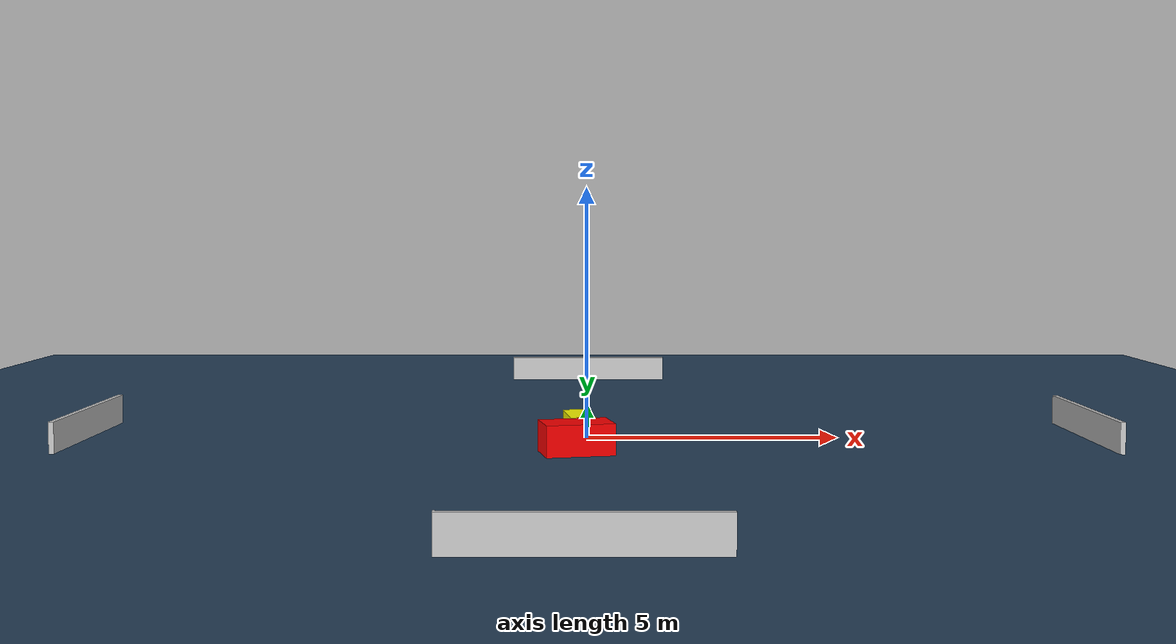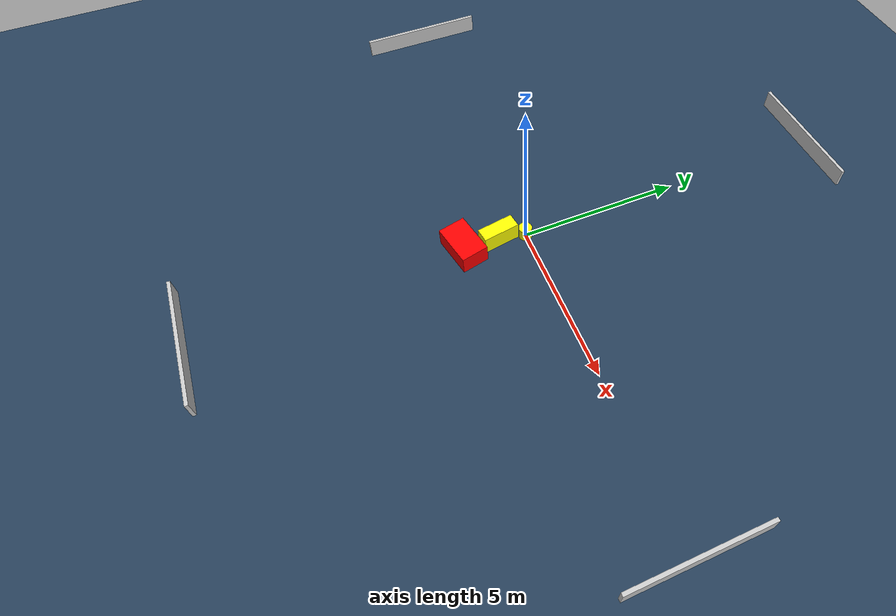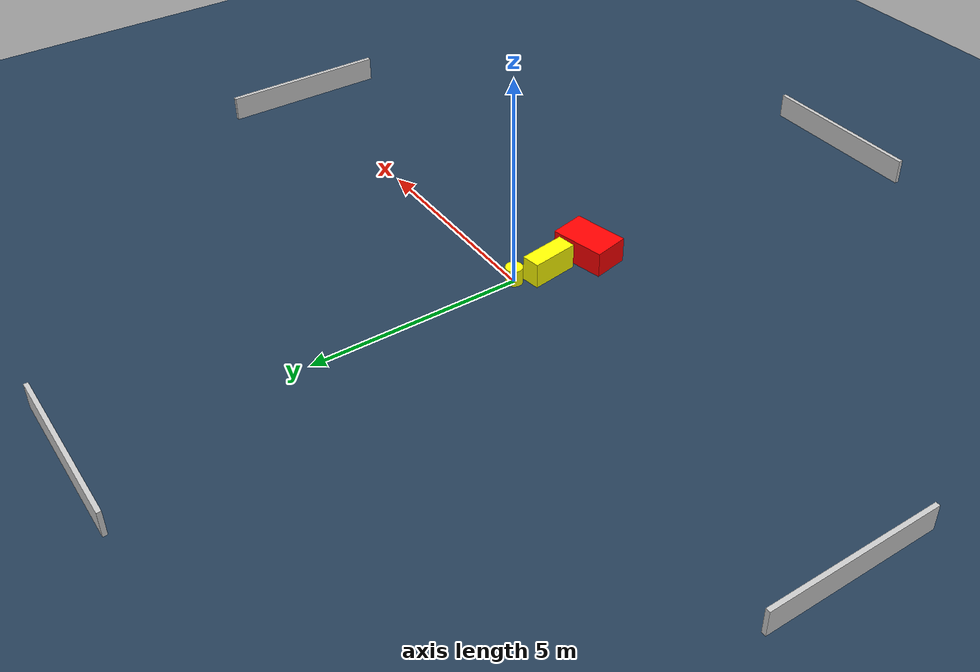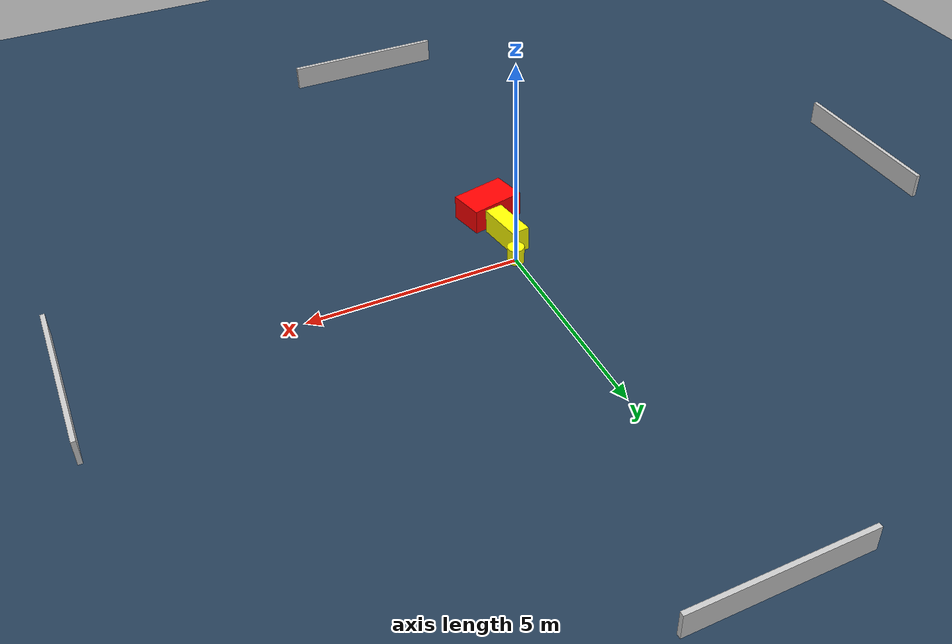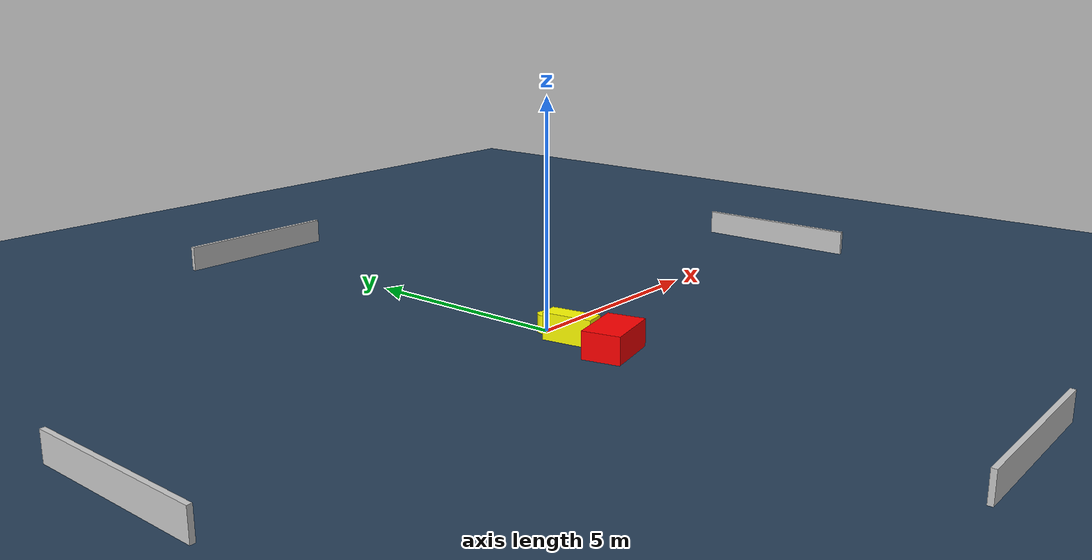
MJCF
<?xml version="1.0" ?>
<mujoco model="generated_environment">
  <option timestep="0.01" integrator="RK4" cone="elliptic"/>
  <default>
    <geom density="1"/>
  </default>
  <asset>
    <texture builtin="gradient" height="3072" name="skybox" rgb1="0.3 0.5 0.7" rgb2="0 0 0" type="skybox" width="512"/>
    <texture builtin="checker" height="300" name="groundplane" rgb1="0.2 0.3 0.4" rgb2="0.1 0.2 0.3" type="2d" width="300"/>
    <material name="groundplane" reflectance="0.2" texrepeat="5 5" texture="groundplane"/>
  </asset>
  <worldbody>
    <light dir="0 0 -1" directional="true" pos="0 0 1.5"/>
    <geom condim="3" friction="0.5 0.005 0.001" material="groundplane" name="floor" pos="0 0 0" size="0 0 0.05" type="plane"/>
    <body name="walls">
      <geom name="wall_1" condim="4" pos="-10.0 0.0 0.3" rgba="0.800000011920929 0.800000011920929 0.800000011920929 1.0" size="0.05 2.0 0.3" type="box"/>
      <geom name="wall_2" condim="4" pos="10.0 0.0 0.3" rgba="0.800000011920929 0.800000011920929 0.800000011920929 1.0" size="0.05 2.0 0.3" type="box"/>
      <geom name="wall_3" condim="4" pos="0.0 -10.0 0.3" rgba="0.800000011920929 0.800000011920929 0.800000011920929 1.0" size="2.0 0.05 0.3" type="box"/>
      <geom name="wall_4" condim="4" pos="0.0 10.0 0.3" rgba="0.800000011920929 0.800000011920929 0.800000011920929 1.0" size="2.0 0.05 0.3" type="box"/>
    </body>
    <body name="robot">
      <joint name="joint_x" type="slide" pos="0 0 0" axis="1 0 0"/>
      <joint name="joint_y" type="slide" pos="0 0 0" axis="0 1 0"/>
      <geom name="robot" type="cylinder" pos="0.0 0.0 0.2" size="0.2 0.2 0.0" mass="5.0" friction="1.0 0.005 0.0001" condim="4" rgba="1.0 1.0 0.0 1.0"/>
    </body>
    <body name="obstacle_1_movable">
      <geom name="obstacle_1_movable" condim="4" pos="-0.1697215984331824 -0.8027031118721637 0.3" euler="0 0 188.76150740209295" friction="0.0 0.005 0.001" rgba="1.0 1.0 0.0 1.0" size="0.21948075666669922 0.5589376558208071 0.3" type="box" mass="0.1"/>
      <joint type="free"/>
    </body>
    <body name="obstacle_2_static">
      <geom name="obstacle_2_static" condim="4" pos="-0.18400881817751968 -1.9005928540544965 0.3" euler="0 0 102.58678839846607" friction="0.0 0.005 0.001" rgba="1.0 0.0 0.0 1.0" size="0.4194574904393463 0.655891520176358 0.3" type="box"/>
    </body>
  </worldbody>
  <actuator>
    <motor name="actuator_x" joint="joint_x" gear="1" ctrlrange="-1 1"/>
    <motor name="actuator_y" joint="joint_y" gear="1" ctrlrange="-1 1"/>
  </actuator>
</mujoco>
